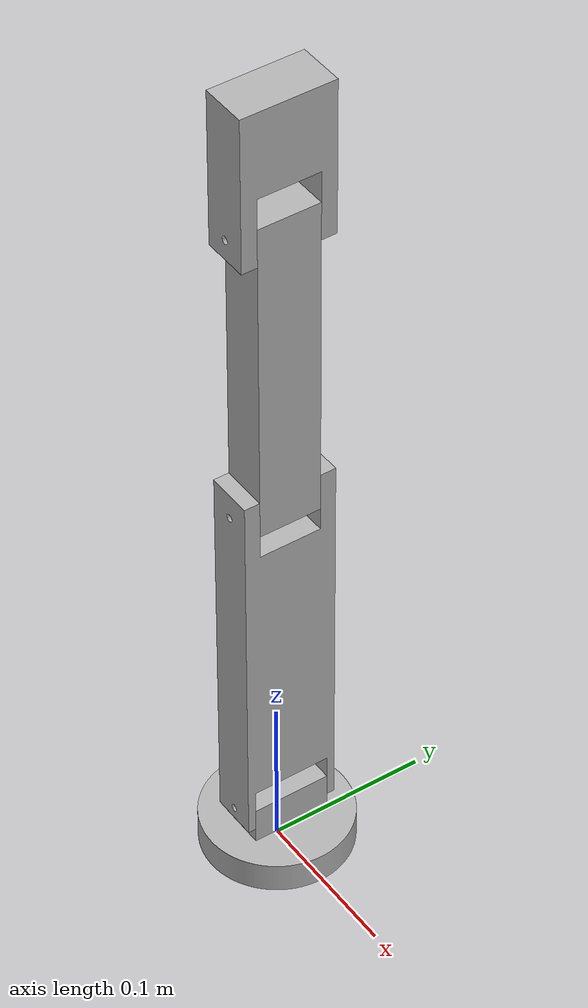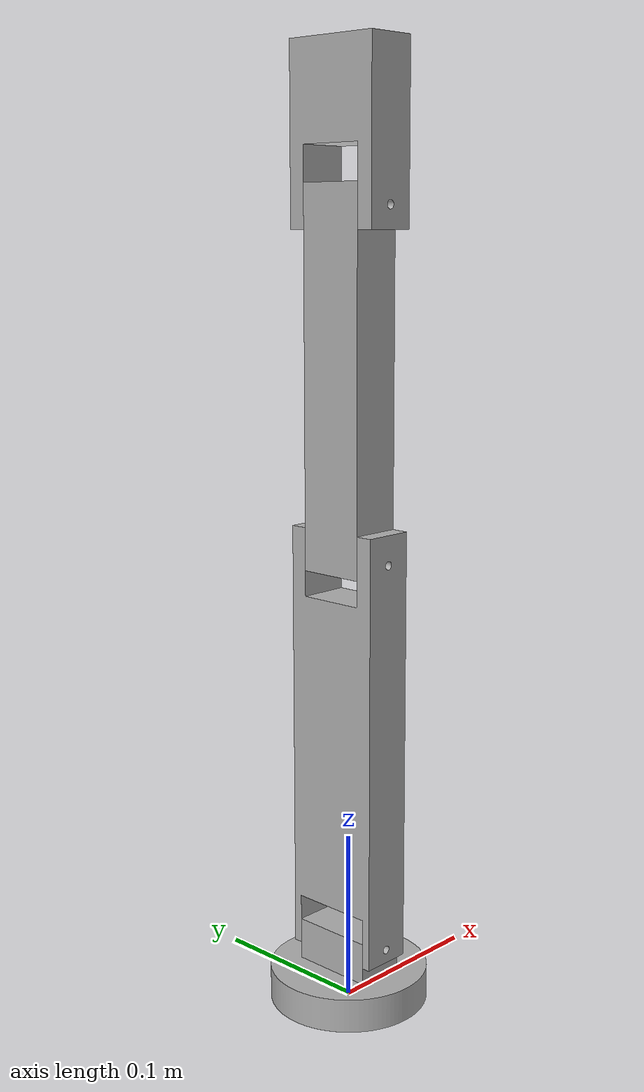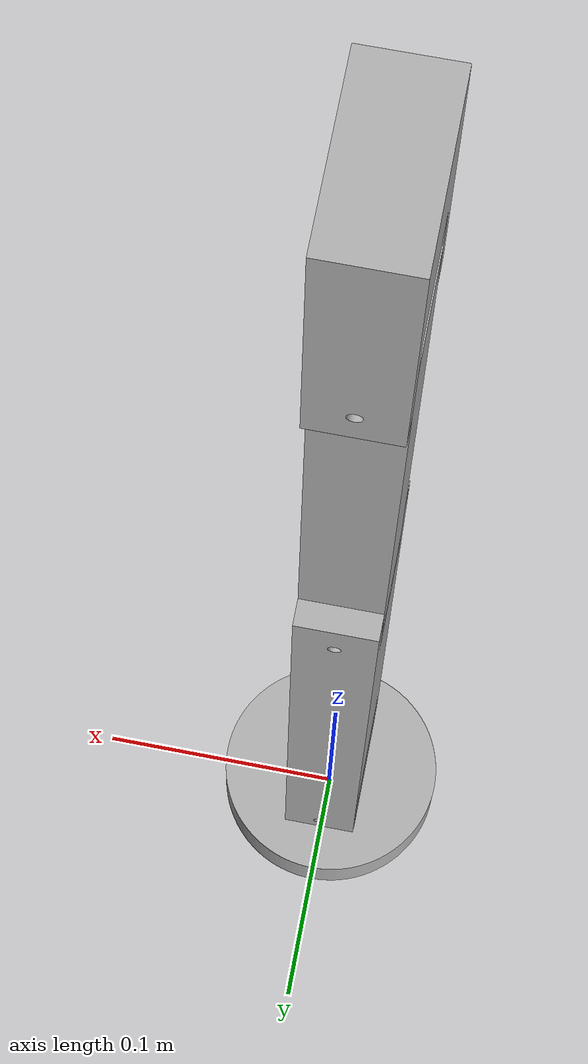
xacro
<?xml version="1.0" ?>
<robot name="arm" xmlns:xacro="http://www.ros.org/wiki/xacro">

<xacro:include filename="$(find arm_description)/urdf/materials.xacro" />
<xacro:include filename="$(find arm_description)/urdf/arm.gazebo" />
<link name="base_link">
  <inertial>
    <origin xyz="8.335040099330152e-18 8.335040099330152e-18 0.01" rpy="0 0 0"/>
    <mass value="1.070710717020314"/>
    <inertia ixx="0.000617" iyy="0.000617" izz="0.001162" ixy="0.0" iyz="0.0" ixz="0.0"/>
  </inertial>
  <visual>
    <origin xyz="0 0 0" rpy="0 0 0"/>
    <geometry>
      <mesh filename="file://$(find arm_description)/meshes/base_link.stl" scale="0.001 0.001 0.001"/>
    </geometry>
    <material name="silver"/>
  </visual>
  <collision>
    <origin xyz="0 0 0" rpy="0 0 0"/>
    <geometry>
      <mesh filename="file://$(find arm_description)/meshes/base_link.stl" scale="0.001 0.001 0.001"/>
    </geometry>
  </collision>
</link>

<link name="link1_1">
  <inertial>
    <origin xyz="2.915245639833243e-15 0.0 0.01482157442513447" rpy="0 0 0"/>
    <mass value="0.3455432805216625"/>
    <inertia ixx="9.8e-05" iyy="5.2e-05" izz="9.8e-05" ixy="0.0" iyz="0.0" ixz="-0.0"/>
  </inertial>
  <visual>
    <origin xyz="-0.0 -0.0 -0.02" rpy="0 0 0"/>
    <geometry>
      <mesh filename="file://$(find arm_description)/meshes/link1_1.stl" scale="0.001 0.001 0.001"/>
    </geometry>
    <material name="silver"/>
  </visual>
  <collision>
    <origin xyz="-0.0 -0.0 -0.02" rpy="0 0 0"/>
    <geometry>
      <mesh filename="file://$(find arm_description)/meshes/link1_1.stl" scale="0.001 0.001 0.001"/>
    </geometry>
  </collision>
</link>

<link name="link2_1">
  <inertial>
    <origin xyz="4.2312387934342156e-16 0.025 0.11917863722158455" rpy="0 0 0"/>
    <mass value="2.868475968312997"/>
    <inertia ixx="0.011517" iyy="0.010778" izz="0.001169" ixy="0.0" iyz="0.0" ixz="-0.0"/>
  </inertial>
  <visual>
    <origin xyz="0.0 0.025 -0.043" rpy="0 0 0"/>
    <geometry>
      <mesh filename="file://$(find arm_description)/meshes/link2_1.stl" scale="0.001 0.001 0.001"/>
    </geometry>
    <material name="silver"/>
  </visual>
  <collision>
    <origin xyz="0.0 0.025 -0.043" rpy="0 0 0"/>
    <geometry>
      <mesh filename="file://$(find arm_description)/meshes/link2_1.stl" scale="0.001 0.001 0.001"/>
    </geometry>
  </collision>
</link>

<link name="link3_1">
  <inertial>
    <origin xyz="1.6071289105825086e-15 0.02 0.09952756543650632" rpy="0 0 0"/>
    <mass value="2.0129692488346587"/>
    <inertia ixx="0.007958" iyy="0.007842" izz="0.00042" ixy="0.0" iyz="0.0" ixz="0.0"/>
  </inertial>
  <visual>
    <origin xyz="0.0 0.02 -0.273" rpy="0 0 0"/>
    <geometry>
      <mesh filename="file://$(find arm_description)/meshes/link3_1.stl" scale="0.001 0.001 0.001"/>
    </geometry>
    <material name="silver"/>
  </visual>
  <collision>
    <origin xyz="0.0 0.02 -0.273" rpy="0 0 0"/>
    <geometry>
      <mesh filename="file://$(find arm_description)/meshes/link3_1.stl" scale="0.001 0.001 0.001"/>
    </geometry>
  </collision>
</link>

<link name="link4_1">
  <inertial>
    <origin xyz="-8.145876330549066e-16 0.019999999999999997 0.0489382381034012" rpy="0 0 0"/>
    <mass value="0.986017312208665"/>
    <inertia ixx="0.001006" iyy="0.000715" izz="0.00044" ixy="0.0" iyz="0.0" ixz="-0.0"/>
  </inertial>
  <visual>
    <origin xyz="0.0 0.02 -0.463" rpy="0 0 0"/>
    <geometry>
      <mesh filename="file://$(find arm_description)/meshes/link4_1.stl" scale="0.001 0.001 0.001"/>
    </geometry>
    <material name="silver"/>
  </visual>
  <collision>
    <origin xyz="0.0 0.02 -0.463" rpy="0 0 0"/>
    <geometry>
      <mesh filename="file://$(find arm_description)/meshes/link4_1.stl" scale="0.001 0.001 0.001"/>
    </geometry>
  </collision>
</link>

<joint name="j1" type="continuous">
  <origin xyz="0.0 0.0 0.02" rpy="0 0 0"/>
  <parent link="base_link"/>
  <child link="link1_1"/>
  <axis xyz="0.0 0.0 1.0"/>
</joint>

<joint name="j2" type="continuous">
  <origin xyz="-0.0 -0.025 0.023" rpy="0 0 0"/>
  <parent link="link1_1"/>
  <child link="link2_1"/>
  <axis xyz="0.0 1.0 0.0"/>
</joint>

<joint name="j3" type="continuous">
  <origin xyz="0.0 0.005 0.23" rpy="0 0 0"/>
  <parent link="link2_1"/>
  <child link="link3_1"/>
  <axis xyz="0.0 1.0 0.0"/>
</joint>

<joint name="j4" type="continuous">
  <origin xyz="0.0 0.0 0.19" rpy="0 0 0"/>
  <parent link="link3_1"/>
  <child link="link4_1"/>
  <axis xyz="0.0 1.0 0.0"/>
</joint>

</robot>

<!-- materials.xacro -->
<robot name="fruit_arm" xmlns:xacro="http://www.ros.org/wiki/xacro" >

<material name="silver">
  <color rgba="0.700 0.700 0.700 1.000"/>
</material>

</robot>

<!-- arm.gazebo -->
<robot name="arm" xmlns:xacro="http://www.ros.org/wiki/xacro" >

<xacro:property name="body_color" value="Gazebo/Silver" />

<gazebo reference="base_link">
  <material>${body_color}</material>
  <mu1>0.2</mu1>
  <mu2>0.2</mu2>
  <self_collide>true</self_collide>
  <gravity>true</gravity>
</gazebo>

<gazebo reference="link1_1">
  <material>${body_color}</material>
  <mu1>0.2</mu1>
  <mu2>0.2</mu2>
  <self_collide>true</self_collide>
</gazebo>

<gazebo reference="link2_1">
  <material>${body_color}</material>
  <mu1>0.2</mu1>
  <mu2>0.2</mu2>
  <self_collide>true</self_collide>
</gazebo>

<gazebo reference="link3_1">
  <material>${body_color}</material>
  <mu1>0.2</mu1>
  <mu2>0.2</mu2>
  <self_collide>true</self_collide>
</gazebo>

<gazebo reference="link4_1">
  <material>${body_color}</material>
  <mu1>0.2</mu1>
  <mu2>0.2</mu2>
  <self_collide>true</self_collide>
</gazebo>

</robot>
